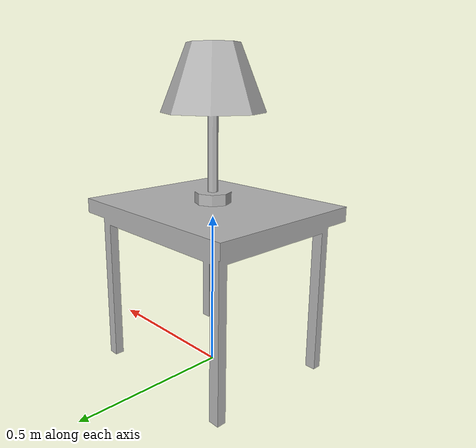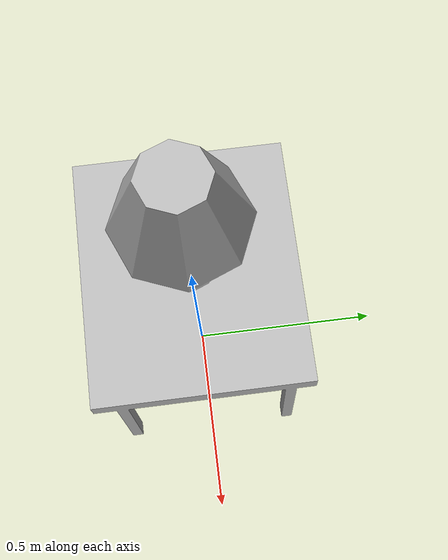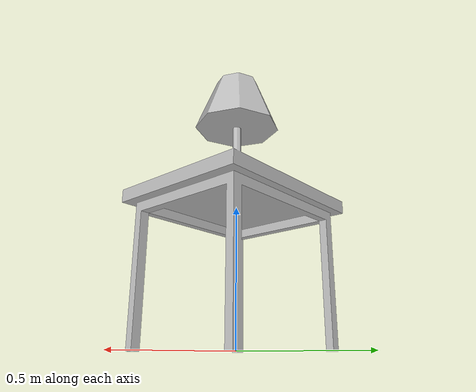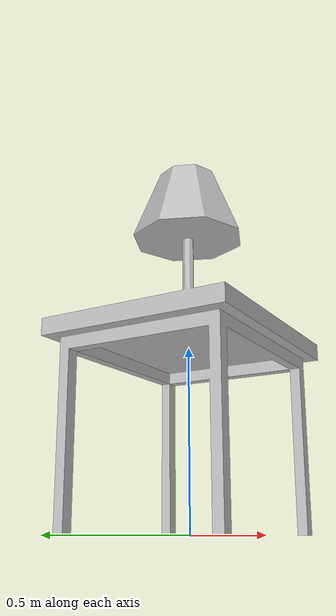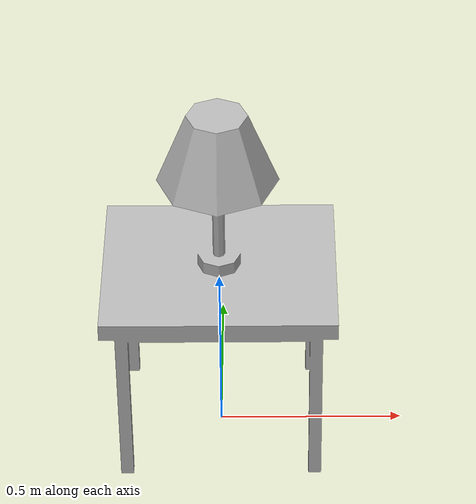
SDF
<?xml version='1.0' encoding='utf-8'?>
<sdf version="1.6">
  <model name="LampAndStand">
   <static>true</static>
    <link name="body">
      <pose>0 0 0 0 0 0</pose>

      <visual name="visual">
        <geometry>
          <mesh>
            <uri>model://LampAndStand/meshes/LampAndStand.obj</uri>
          </mesh>
        </geometry>
      </visual>

      <collision name="collision">
        <geometry>
          <mesh>
            <uri>model://LampAndStand/meshes/LampAndStand_Col.obj</uri>
          </mesh>
        </geometry>
      </collision>

    </link>
  </model>
</sdf>
